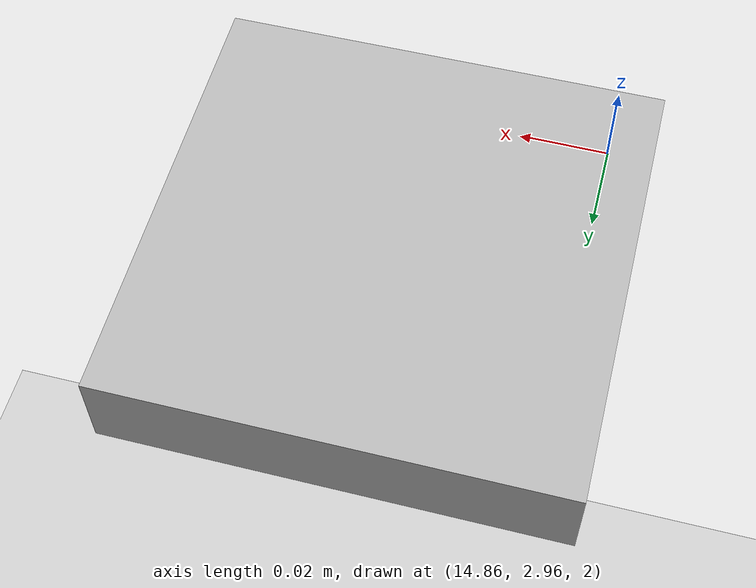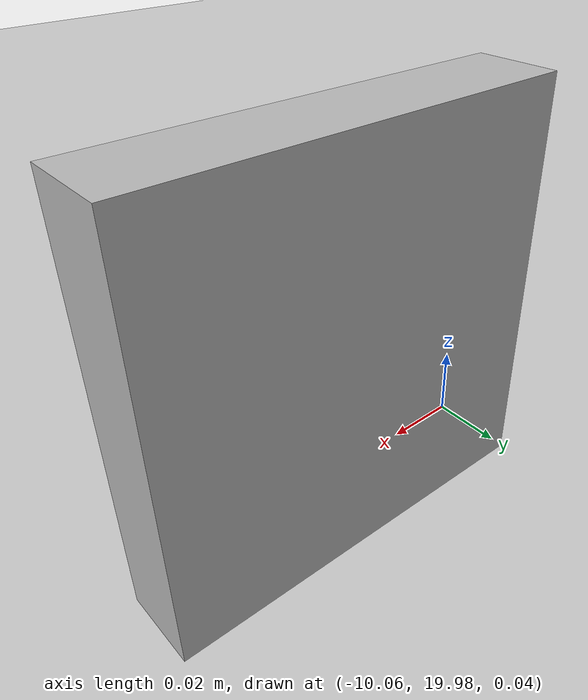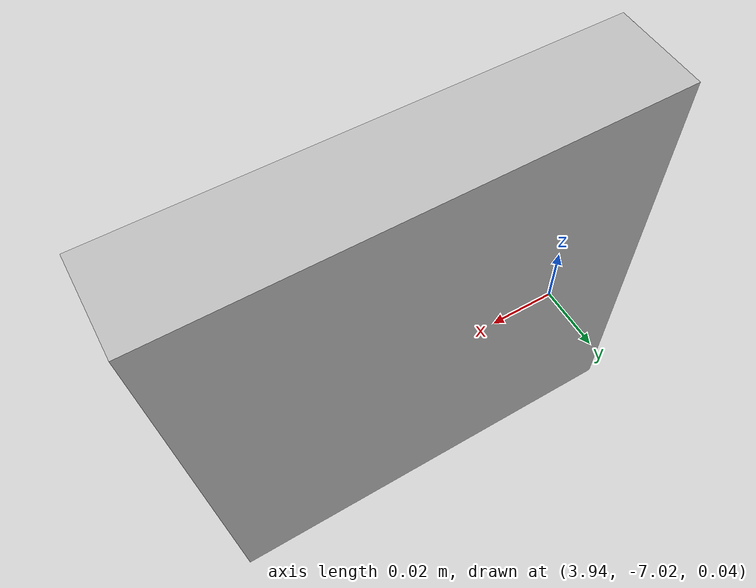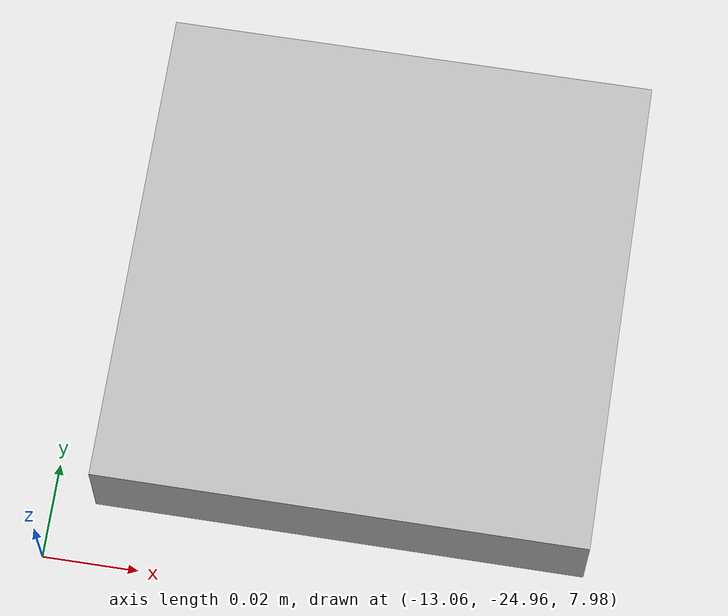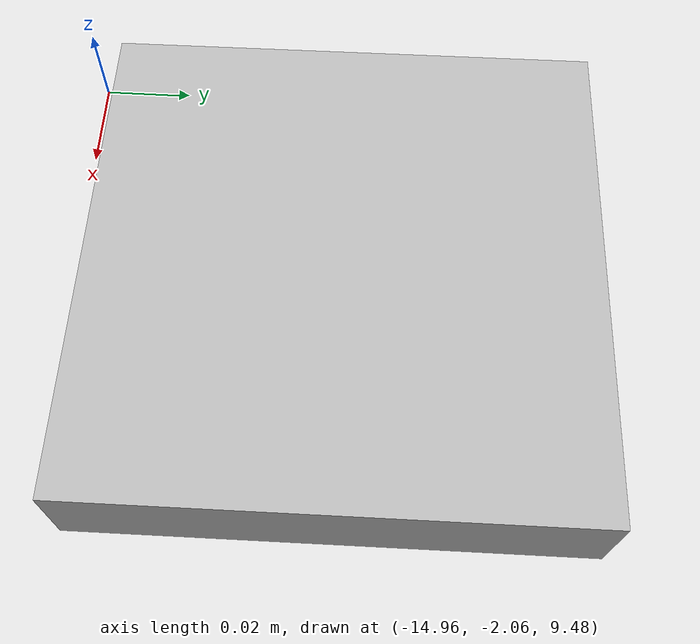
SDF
<sdf version="1.9">
 <world name="warehouse">
  <physics type="ode">
   <max_step_size>0.004</max_step_size>
   <real_time_factor>1.0</real_time_factor>
   <real_time_update_rate>250</real_time_update_rate>
  </physics>
  <plugin name="gz::sim::systems::Physics" filename="gz-sim-physics-system"/>
  <plugin name="gz::sim::systems::UserCommands" filename="gz-sim-user-commands-system"/>
  <plugin name="gz::sim::systems::SceneBroadcaster" filename="gz-sim-scene-broadcaster-system"/>
  <plugin name="gz::sim::systems::Contact" filename="gz-sim-contact-system"/>
  <plugin name="gz::sim::systems::Imu" filename="gz-sim-imu-system"/>
  <plugin name="gz::sim::systems::AirPressure" filename="gz-sim-air-pressure-system"/>
  <plugin name="gz::sim::systems::ApplyLinkWrench" filename="gz-sim-apply-link-wrench-system"/>
  <plugin name="gz::sim::systems::NavSat" filename="gz-sim-navsat-system"/>
  <plugin name="gz::sim::systems::Sensors" filename="gz-sim-sensors-system">
   <render_engine>ogre2</render_engine>
  </plugin>
  <gravity>0 0 -9.8</gravity>
  <magnetic_field>6e-06 2.3e-05 -4.2e-05</magnetic_field>
  <atmosphere type="adiabatic"/>
  <scene>
   <grid>false</grid>
   <ambient>0.4 0.4 0.4 1</ambient>
   <background>0.7 0.7 0.7 1</background>
   <shadows>true</shadows>
  </scene>
  <model name="ground_plane">
   <static>true</static>
   <link name="link">
    <collision name="collision">
     <geometry><plane><normal>0 0 1</normal><size>1 1</size></plane></geometry>
    </collision>
    <visual name="visual">
     <geometry><plane><normal>0 0 1</normal><size>100 100</size></plane></geometry>
     <material>
      <ambient>0.8 0.8 0.8 1</ambient>
      <diffuse>0.8 0.8 0.8 1</diffuse>
      <specular>0.8 0.8 0.8 1</specular>
     </material>
    </visual>
    <inertial>
     <mass>1</mass>
     <inertia><ixx>1</ixx><ixy>0</ixy><ixz>0</ixz><iyy>1</iyy><iyz>0</iyz><izz>1</izz></inertia>
    </inertial>
   </link>
  </model>
  <light name="sunUTC" type="directional">
   <pose>0 0 500 0 -0 0</pose>
   <intensity>1</intensity>
   <direction>0.001 0.625 -0.78</direction>
   <diffuse>0.904 0.904 0.904 1</diffuse>
   <specular>0.271 0.271 0.271 1</specular>
   <attenuation><range>2000</range><linear>0</linear><constant>1</constant><quadratic>0</quadratic></attenuation>
   <spot><inner_angle>0</inner_angle><outer_angle>0</outer_angle><falloff>0</falloff></spot>
  </light>
  <spherical_coordinates>
   <surface_model>EARTH_WGS84</surface_model>
   <world_frame_orientation>ENU</world_frame_orientation>
   <latitude_deg>47.397971057728974</latitude_deg>
   <longitude_deg>8.546163739800146</longitude_deg>
   <elevation>0</elevation>
  </spherical_coordinates>
  <include>
   <uri>model://uwb_beacon</uri>
   <name>uwb_beacon_0</name>
   <pose>14.9 3.0 2.0 0 0 0</pose>
   <static>true</static>
  </include>
  <include>
   <uri>model://uwb_beacon</uri>
   <name>uwb_beacon_1</name>
   <pose>5.5 24.9 7.0 0 0 1.57</pose>
   <static>true</static>
  </include>
  <include>
   <uri>model://uwb_beacon</uri>
   <name>uwb_beacon_2</name>
   <pose>-14.9 -2.0 9.5 0 0 3.14</pose>
   <static>true</static>
  </include>
  <include>
   <uri>model://uwb_beacon</uri>
   <name>uwb_beacon_3</name>
   <pose>10.0 -24.9 4.0 0 0 -1.57</pose>
   <static>true</static>
  </include>
  <include>
   <uri>model://uwb_beacon</uri>
   <name>uwb_beacon_4</name>
   <pose>-13.0 -24.9 8.0 0 0 -1.57</pose>
   <static>true</static>
  </include>
  <include>
   <uri>model://uwb_beacon</uri>
   <name>uwb_beacon_5</name>
   <pose>-10.0 20.0 0.1 0 1.57 1.57</pose>
   <static>true</static>
  </include>
  <include>
   <uri>model://uwb_beacon</uri>
   <name>uwb_beacon_6</name>
   <pose>4.0 -7.0 0.1 0 1.57 -1.57</pose>
   <static>true</static>
  </include>
 </world>
</sdf>

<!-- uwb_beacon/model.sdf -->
<sdf version="1.10">
  <model name="uwb_beacon">
    <self_collide>false</self_collide>
    <static>true</static>
    <link name="beacon">
      <light name="beacon_light" type="spot">
        <cast_shadows>false</cast_shadows>
        <visualize>0</visualize>
        <diffuse>0 1.0 0</diffuse>
        <specular>0 1.0 0</specular>
        <direction>0 0 1</direction>
        <intensity>5.0</intensity>
        <spot>
          <inner_angle>2.0</inner_angle>
          <outer_angle>2.0</outer_angle>
        </spot>
      </light>
      <visual name="beacon_body">
        <geometry>
          <box>
            <size>.1 .1 .02</size>
          </box>
        </geometry>
        <cast_shadows>false</cast_shadows>
      </visual>
    </link>
  </model>
</sdf>
